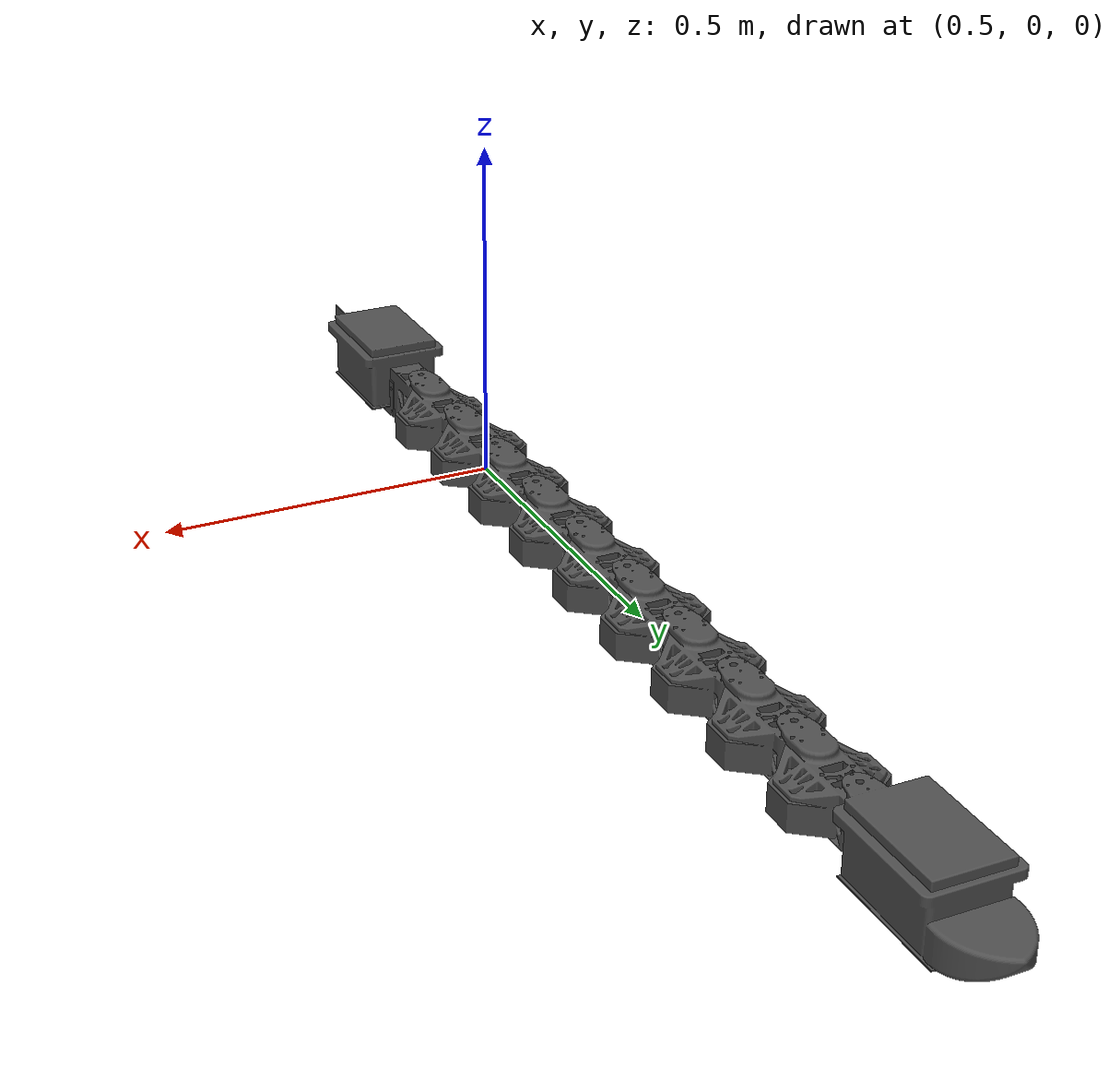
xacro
<?xml version="1.0" ?>
<robot name="snake_robot_cit" xmlns:xacro="http://www.ros.org/wiki/xacro">

<xacro:include filename="$(find snake_robot_cit_description)/urdf/materials.xacro" />
<xacro:include filename="$(find snake_robot_cit_description)/urdf/snake_robot_cit.trans" />
<link name="base_link">
  <inertial>
    <origin xyz="0.49333731311283335 1.158454640943659 0.019785748921786316" rpy="0 0 0"/>
    <mass value="2.4672394368378052"/>
    <inertia ixx="0.013192" iyy="0.00469" izz="0.013535" ixy="7e-06" iyz="0.000587" ixz="-0.0"/>
  </inertial>
  <visual>
    <origin xyz="0 0 0" rpy="0 0 0"/>
    <geometry>
      <mesh filename="package://snake_robot_cit_description/meshes/base_link.stl" scale="0.001 0.001 0.001"/>
    </geometry>
    <material name="default"/>
  </visual>
  <collision>
    <origin xyz="0 0 0" rpy="0 0 0"/>
    <geometry>
      <mesh filename="package://snake_robot_cit_description/meshes/base_link.stl" scale="0.001 0.001 0.001"/>
    </geometry>
  </collision>
</link>

<link name="onemodule1_1">
  <inertial>
    <origin xyz="-6.43198592636951e-06 -0.06684395997270809 0.045082314708387916" rpy="0 0 0"/>
    <mass value="0.718982525570161"/>
    <inertia ixx="0.001158" iyy="0.001136" izz="0.001592" ixy="3e-06" iyz="2.8e-05" ixz="0.0"/>
  </inertial>
  <visual>
    <origin xyz="-0.493459 -1.011872 0.043511" rpy="0 0 0"/>
    <geometry>
      <mesh filename="package://snake_robot_cit_description/meshes/onemodule1_1.stl" scale="0.001 0.001 0.001"/>
    </geometry>
    <material name="default"/>
  </visual>
  <collision>
    <origin xyz="-0.493459 -1.011872 0.043511" rpy="0 0 0"/>
    <geometry>
      <mesh filename="package://snake_robot_cit_description/meshes/onemodule1_1.stl" scale="0.001 0.001 0.001"/>
    </geometry>
  </collision>
</link>

<link name="onemodule2_1">
  <inertial>
    <origin xyz="-6.4703775745633685e-06 -0.06684388681472053 0.04508231470838813" rpy="0 0 0"/>
    <mass value="0.718982525570161"/>
    <inertia ixx="0.001158" iyy="0.001136" izz="0.001592" ixy="3e-06" iyz="2.8e-05" ixz="0.0"/>
  </inertial>
  <visual>
    <origin xyz="-0.493578 -0.869872 0.043511" rpy="0 0 0"/>
    <geometry>
      <mesh filename="package://snake_robot_cit_description/meshes/onemodule2_1.stl" scale="0.001 0.001 0.001"/>
    </geometry>
    <material name="default"/>
  </visual>
  <collision>
    <origin xyz="-0.493578 -0.869872 0.043511" rpy="0 0 0"/>
    <geometry>
      <mesh filename="package://snake_robot_cit_description/meshes/onemodule2_1.stl" scale="0.001 0.001 0.001"/>
    </geometry>
  </collision>
</link>

<link name="onemodule3_1">
  <inertial>
    <origin xyz="-6.5087692222576266e-06 -0.06684381365673298 0.045082314708388346" rpy="0 0 0"/>
    <mass value="0.718982525570161"/>
    <inertia ixx="0.001158" iyy="0.001136" izz="0.001592" ixy="3e-06" iyz="2.8e-05" ixz="0.0"/>
  </inertial>
  <visual>
    <origin xyz="-0.493697 -0.727872 0.043511" rpy="0 0 0"/>
    <geometry>
      <mesh filename="package://snake_robot_cit_description/meshes/onemodule3_1.stl" scale="0.001 0.001 0.001"/>
    </geometry>
    <material name="default"/>
  </visual>
  <collision>
    <origin xyz="-0.493697 -0.727872 0.043511" rpy="0 0 0"/>
    <geometry>
      <mesh filename="package://snake_robot_cit_description/meshes/onemodule3_1.stl" scale="0.001 0.001 0.001"/>
    </geometry>
  </collision>
</link>

<link name="onemodule4_1">
  <inertial>
    <origin xyz="-6.54716087067353e-06 -0.06684374049874575 0.04508231470838863" rpy="0 0 0"/>
    <mass value="0.718982525570161"/>
    <inertia ixx="0.001158" iyy="0.001136" izz="0.001592" ixy="3e-06" iyz="2.8e-05" ixz="0.0"/>
  </inertial>
  <visual>
    <origin xyz="-0.493816 -0.585872 0.043511" rpy="0 0 0"/>
    <geometry>
      <mesh filename="package://snake_robot_cit_description/meshes/onemodule4_1.stl" scale="0.001 0.001 0.001"/>
    </geometry>
    <material name="default"/>
  </visual>
  <collision>
    <origin xyz="-0.493816 -0.585872 0.043511" rpy="0 0 0"/>
    <geometry>
      <mesh filename="package://snake_robot_cit_description/meshes/onemodule4_1.stl" scale="0.001 0.001 0.001"/>
    </geometry>
  </collision>
</link>

<link name="onemodule5_1">
  <inertial>
    <origin xyz="-6.585552518811877e-06 -0.0668436673407582 0.045082314708388915" rpy="0 0 0"/>
    <mass value="0.718982525570161"/>
    <inertia ixx="0.001158" iyy="0.001136" izz="0.001592" ixy="3e-06" iyz="2.8e-05" ixz="0.0"/>
  </inertial>
  <visual>
    <origin xyz="-0.493935 -0.443872 0.043511" rpy="0 0 0"/>
    <geometry>
      <mesh filename="package://snake_robot_cit_description/meshes/onemodule5_1.stl" scale="0.001 0.001 0.001"/>
    </geometry>
    <material name="default"/>
  </visual>
  <collision>
    <origin xyz="-0.493935 -0.443872 0.043511" rpy="0 0 0"/>
    <geometry>
      <mesh filename="package://snake_robot_cit_description/meshes/onemodule5_1.stl" scale="0.001 0.001 0.001"/>
    </geometry>
  </collision>
</link>

<link name="onemodule6_1">
  <inertial>
    <origin xyz="-6.62394416722778e-06 -0.06684359418277025 0.04508231470838916" rpy="0 0 0"/>
    <mass value="0.718982525570161"/>
    <inertia ixx="0.001158" iyy="0.001136" izz="0.001592" ixy="3e-06" iyz="2.8e-05" ixz="0.0"/>
  </inertial>
  <visual>
    <origin xyz="-0.494054 -0.301872 0.043511" rpy="0 0 0"/>
    <geometry>
      <mesh filename="package://snake_robot_cit_description/meshes/onemodule6_1.stl" scale="0.001 0.001 0.001"/>
    </geometry>
    <material name="default"/>
  </visual>
  <collision>
    <origin xyz="-0.494054 -0.301872 0.043511" rpy="0 0 0"/>
    <geometry>
      <mesh filename="package://snake_robot_cit_description/meshes/onemodule6_1.stl" scale="0.001 0.001 0.001"/>
    </geometry>
  </collision>
</link>

<link name="onemodule7_1">
  <inertial>
    <origin xyz="-6.662335815199594e-06 -0.06684352102478269 0.04508231470838948" rpy="0 0 0"/>
    <mass value="0.718982525570161"/>
    <inertia ixx="0.001158" iyy="0.001136" izz="0.001592" ixy="3e-06" iyz="2.8e-05" ixz="0.0"/>
  </inertial>
  <visual>
    <origin xyz="-0.494173 -0.159872 0.043511" rpy="0 0 0"/>
    <geometry>
      <mesh filename="package://snake_robot_cit_description/meshes/onemodule7_1.stl" scale="0.001 0.001 0.001"/>
    </geometry>
    <material name="default"/>
  </visual>
  <collision>
    <origin xyz="-0.494173 -0.159872 0.043511" rpy="0 0 0"/>
    <geometry>
      <mesh filename="package://snake_robot_cit_description/meshes/onemodule7_1.stl" scale="0.001 0.001 0.001"/>
    </geometry>
  </collision>
</link>

<link name="onemodule8_1">
  <inertial>
    <origin xyz="-6.7007274635044745e-06 -0.06684344786679515 0.04508231470838973" rpy="0 0 0"/>
    <mass value="0.718982525570161"/>
    <inertia ixx="0.001158" iyy="0.001136" izz="0.001592" ixy="3e-06" iyz="2.8e-05" ixz="0.0"/>
  </inertial>
  <visual>
    <origin xyz="-0.494292 -0.017872 0.043511" rpy="0 0 0"/>
    <geometry>
      <mesh filename="package://snake_robot_cit_description/meshes/onemodule8_1.stl" scale="0.001 0.001 0.001"/>
    </geometry>
    <material name="default"/>
  </visual>
  <collision>
    <origin xyz="-0.494292 -0.017872 0.043511" rpy="0 0 0"/>
    <geometry>
      <mesh filename="package://snake_robot_cit_description/meshes/onemodule8_1.stl" scale="0.001 0.001 0.001"/>
    </geometry>
  </collision>
</link>

<link name="onemodule9_1">
  <inertial>
    <origin xyz="-6.739119111642822e-06 -0.06684337470880765 0.04508231470839009" rpy="0 0 0"/>
    <mass value="0.718982525570161"/>
    <inertia ixx="0.001158" iyy="0.001136" izz="0.001592" ixy="3e-06" iyz="2.8e-05" ixz="0.0"/>
  </inertial>
  <visual>
    <origin xyz="-0.494411 0.124128 0.043511" rpy="0 0 0"/>
    <geometry>
      <mesh filename="package://snake_robot_cit_description/meshes/onemodule9_1.stl" scale="0.001 0.001 0.001"/>
    </geometry>
    <material name="default"/>
  </visual>
  <collision>
    <origin xyz="-0.494411 0.124128 0.043511" rpy="0 0 0"/>
    <geometry>
      <mesh filename="package://snake_robot_cit_description/meshes/onemodule9_1.stl" scale="0.001 0.001 0.001"/>
    </geometry>
  </collision>
</link>

<link name="tailmodule_1">
  <inertial>
    <origin xyz="0.0001023758869976854 -0.14845328640353694 0.06592679604033103" rpy="0 0 0"/>
    <mass value="2.1589988659404105"/>
    <inertia ixx="0.009443" iyy="0.004196" izz="0.009702" ixy="1.1e-05" iyz="0.000381" ixz="-1e-06"/>
  </inertial>
  <visual>
    <origin xyz="-0.49453 0.266128 0.043511" rpy="0 0 0"/>
    <geometry>
      <mesh filename="package://snake_robot_cit_description/meshes/tailmodule_1.stl" scale="0.001 0.001 0.001"/>
    </geometry>
    <material name="default"/>
  </visual>
  <collision>
    <origin xyz="-0.49453 0.266128 0.043511" rpy="0 0 0"/>
    <geometry>
      <mesh filename="package://snake_robot_cit_description/meshes/tailmodule_1.stl" scale="0.001 0.001 0.001"/>
    </geometry>
  </collision>
</link>

<joint name="revjoint1" type="revolute">
  <origin xyz="0.493459 1.011872 -0.043511" rpy="0 0 0"/>
  <parent link="base_link"/>
  <child link="onemodule1_1"/>
  <axis xyz="-0.0 0.0 1.0"/>
  <limit upper="1.047198" lower="-1.047198" effort="100" velocity="100"/>
</joint>

<joint name="revjoint2" type="revolute">
  <origin xyz="0.000119 -0.142 0.0" rpy="0 0 0"/>
  <parent link="onemodule1_1"/>
  <child link="onemodule2_1"/>
  <axis xyz="-0.0 0.0 1.0"/>
  <limit upper="1.047198" lower="-1.047198" effort="100" velocity="100"/>
</joint>

<joint name="revjoint3" type="revolute">
  <origin xyz="0.000119 -0.142 0.0" rpy="0 0 0"/>
  <parent link="onemodule2_1"/>
  <child link="onemodule3_1"/>
  <axis xyz="-0.0 0.0 1.0"/>
  <limit upper="1.047198" lower="-1.047198" effort="100" velocity="100"/>
</joint>

<joint name="revjoint4" type="revolute">
  <origin xyz="0.000119 -0.142 0.0" rpy="0 0 0"/>
  <parent link="onemodule3_1"/>
  <child link="onemodule4_1"/>
  <axis xyz="-0.0 0.0 1.0"/>
  <limit upper="1.047198" lower="-1.047198" effort="100" velocity="100"/>
</joint>

<joint name="revjoint5" type="revolute">
  <origin xyz="0.000119 -0.142 0.0" rpy="0 0 0"/>
  <parent link="onemodule4_1"/>
  <child link="onemodule5_1"/>
  <axis xyz="-0.0 0.0 1.0"/>
  <limit upper="1.047198" lower="-1.047198" effort="100" velocity="100"/>
</joint>

<joint name="revjoint6" type="revolute">
  <origin xyz="0.000119 -0.142 0.0" rpy="0 0 0"/>
  <parent link="onemodule5_1"/>
  <child link="onemodule6_1"/>
  <axis xyz="-0.0 0.0 1.0"/>
  <limit upper="1.047198" lower="-1.047198" effort="100" velocity="100"/>
</joint>

<joint name="revjoint7" type="revolute">
  <origin xyz="0.000119 -0.142 0.0" rpy="0 0 0"/>
  <parent link="onemodule6_1"/>
  <child link="onemodule7_1"/>
  <axis xyz="-0.0 0.0 1.0"/>
  <limit upper="1.047198" lower="-1.047198" effort="100" velocity="100"/>
</joint>

<joint name="revjoint8" type="revolute">
  <origin xyz="0.000119 -0.142 0.0" rpy="0 0 0"/>
  <parent link="onemodule7_1"/>
  <child link="onemodule8_1"/>
  <axis xyz="-0.0 0.0 1.0"/>
  <limit upper="1.047198" lower="-1.047198" effort="100" velocity="100"/>
</joint>

<joint name="revjoint9" type="revolute">
  <origin xyz="0.000119 -0.142 0.0" rpy="0 0 0"/>
  <parent link="onemodule8_1"/>
  <child link="onemodule9_1"/>
  <axis xyz="-0.0 0.0 1.0"/>
  <limit upper="1.047198" lower="-1.047198" effort="100" velocity="100"/>
</joint>

<joint name="revjoint10" type="revolute">
  <origin xyz="0.000119 -0.142 0.0" rpy="0 0 0"/>
  <parent link="onemodule9_1"/>
  <child link="tailmodule_1"/>
  <axis xyz="-0.0 0.0 1.0"/>
  <limit upper="1.047198" lower="-1.047198" effort="100" velocity="100"/>
</joint>

</robot>

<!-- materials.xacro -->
<robot name="snake_robot_cit" xmlns:xacro="http://www.ros.org/wiki/xacro" >

<material name="silver_default">
  <color rgba="0.700 0.700 0.700 1.000"/>
</material>
<material name="default">
  <color rgba="0.3137254901960784 0.3137254901960784 0.3137254901960784 1.0"/>
</material>

</robot>
